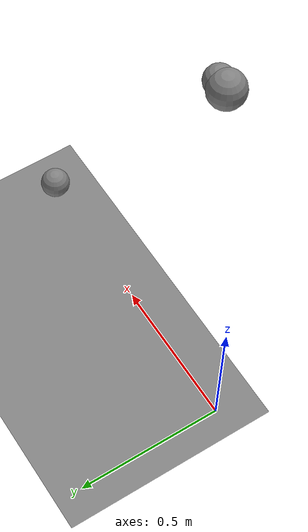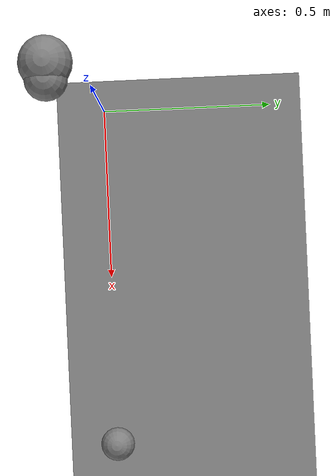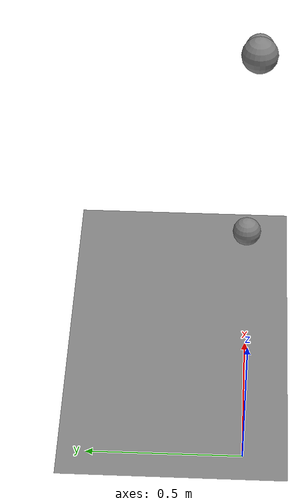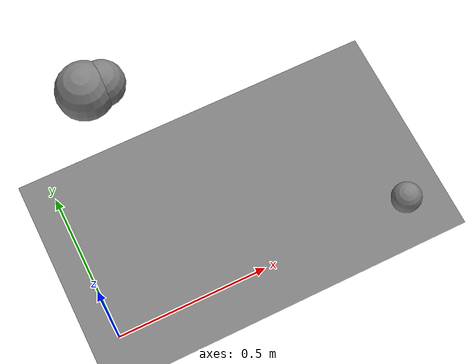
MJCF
<mujoco model="flag_golden_test">
  <option gravity="0 0 -9.81" timestep="0.002"/>
  <worldbody>
    <geom name="floor" type="plane" size="5 5 0.1" friction="1 0.005 0.0001"/>

    <!-- Two-link arm: hinge1 has spring, damper, limit, frictionloss.
         arm_geom and forearm_geom overlap for parent-child filtering test. -->
    <body name="arm" pos="0 0 1.5">
      <joint name="hinge1" type="hinge" axis="0 1 0"
             stiffness="5" damping="1" frictionloss="0.5"
             limited="true" range="-0.1 0.1"/>
      <geom name="arm_geom" type="sphere" size="0.05" pos="0.12 0 0" mass="1.0"/>

      <body name="forearm" pos="0.15 0 0">
        <joint name="hinge2" type="hinge" axis="0 1 0"
               stiffness="2" damping="0.5"/>
        <geom name="forearm_geom" type="sphere" size="0.04" mass="0.3"/>
        <site name="tip" pos="0 0 0"/>
      </body>
    </body>

    <!-- Free-floating ball slightly penetrating floor: immediate contact.
         Creates second constraint island separate from arm chain. -->
    <body name="ball" pos="1 0 0.049">
      <freejoint name="ball_joint"/>
      <geom name="ball_geom" type="sphere" size="0.05" mass="0.5"
            friction="1 0.005 0.0001"/>
    </body>
  </worldbody>

  <!-- Fixed tendon coupling hinge1 and hinge2 with spring/damping/frictionloss -->
  <tendon>
    <fixed name="coupling" stiffness="5" damping="1" frictionloss="0.3">
      <joint joint="hinge1" coef="1.0"/>
      <joint joint="hinge2" coef="-1.0"/>
    </fixed>
  </tendon>

  <!-- Equality constraint: hinge2 = 0.5*hinge1.
       solref="0.002 1" is below 2*timestep=0.004, exercises DISABLE_REFSAFE. -->
  <equality>
    <joint name="joint_eq" joint1="hinge1" joint2="hinge2"
           polycoef="0 0.5 0 0 0"
           solref="0.002 1" solimp="0.9 0.95 0.001 0.5 2"/>
  </equality>

  <!-- Sensor: exercises DISABLE_SENSOR -->
  <sensor>
    <jointpos name="hinge1_pos" joint="hinge1"/>
  </sensor>

  <!-- Motor with ctrlrange: exercises DISABLE_ACTUATION, DISABLE_CLAMPCTRL.
       Tests set ctrl[0]=2.0 (outside [-1,1]) so DISABLE_CLAMPCTRL has observable effect. -->
  <actuator>
    <motor joint="hinge1" name="motor" ctrlrange="-1 1"/>
  </actuator>
</mujoco>
